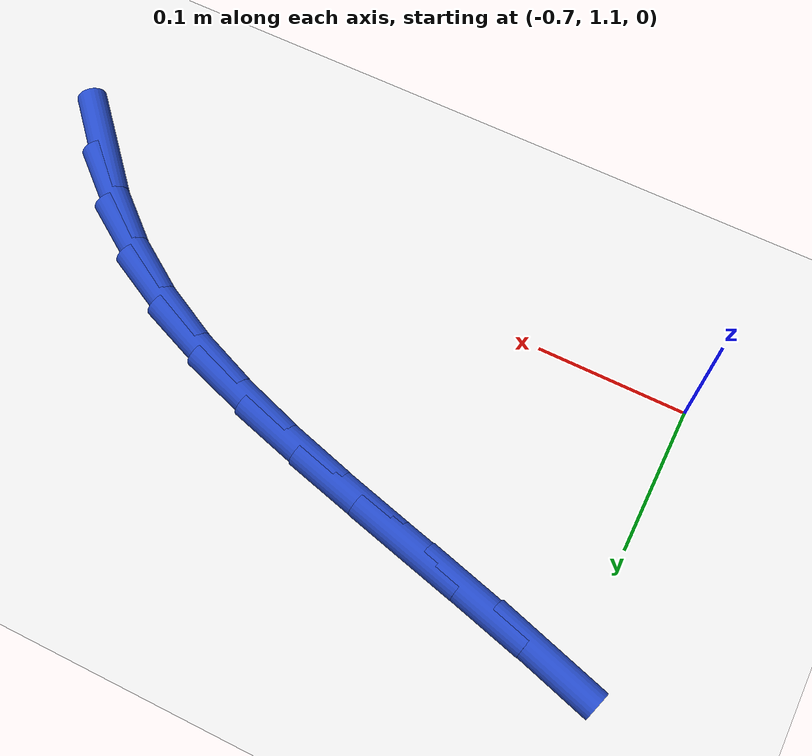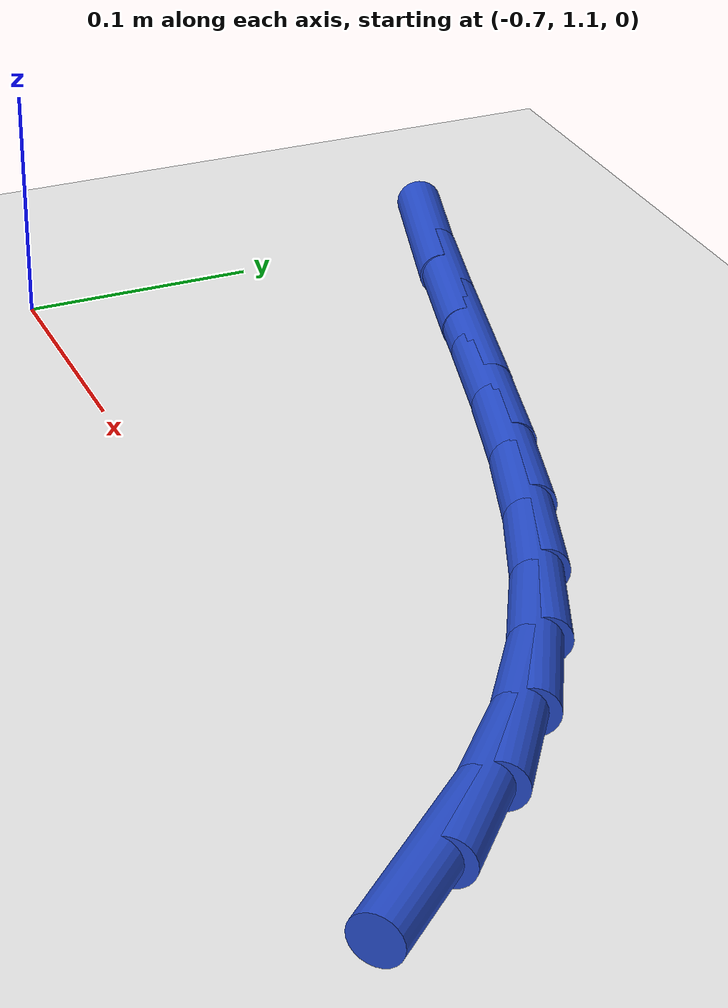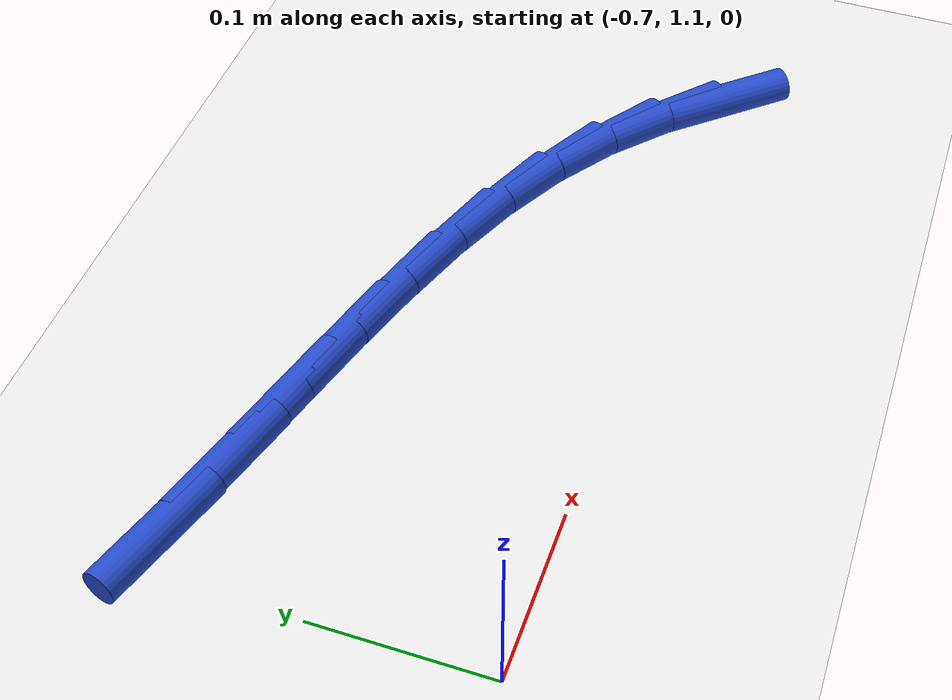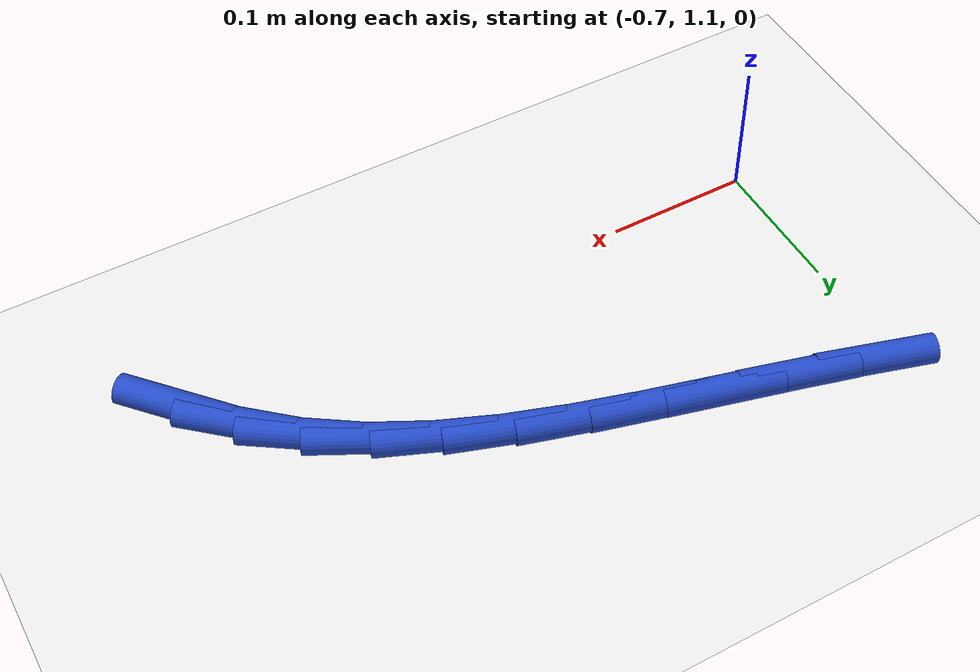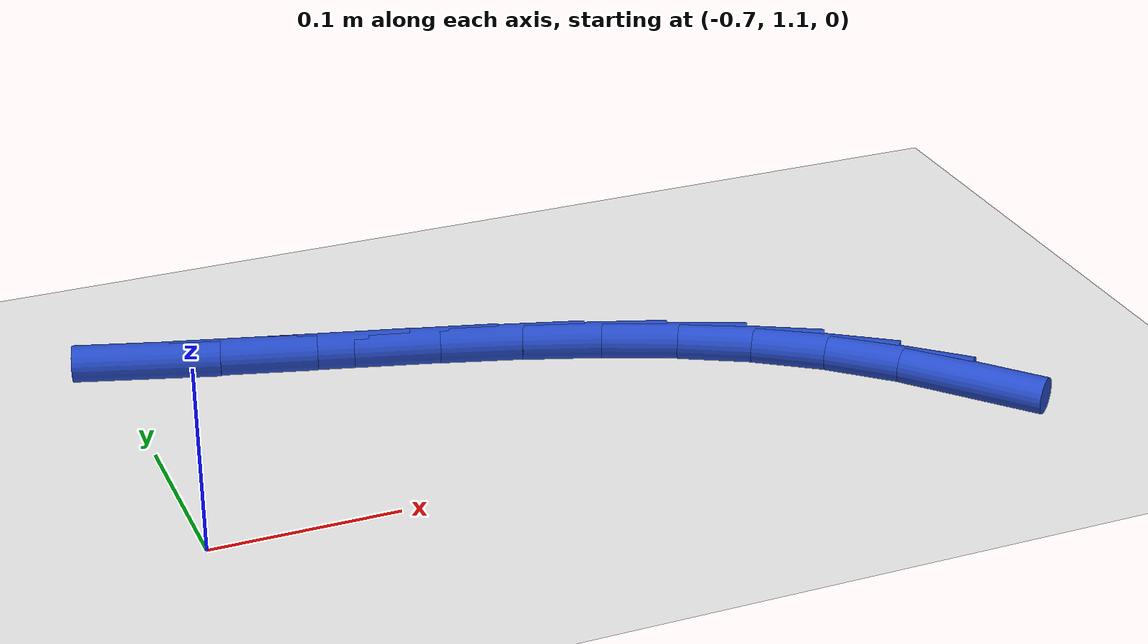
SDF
<sdf version="1.6">
 <world name="default">
  <model name="ground_plane">
   <static>1</static>
   <link name="link">
    <collision name="collision">
     <geometry><plane><normal>0 0 1</normal><size>100 100</size></plane></geometry>
     <surface><friction><ode><mu>100</mu><mu2>50</mu2></ode></friction></surface>
    </collision>
    <visual name="visual">
     <cast_shadows>0</cast_shadows>
     <geometry><plane><normal>0 0 1</normal><size>100 100</size></plane></geometry>
     <material>
      <script><uri>file://media/materials/scripts/gazebo.material</uri><name>Gazebo/WhiteGlow</name></script>
     </material>
    </visual>
   </link>
  </model>
  <model name="line">
   <link name="link_23">
    <pose>-0.27618328534567604 1.0976530350263796 0.01 0 1.57 -0.8472905187564059</pose>
    <collision name="collision">
     <geometry><cylinder><radius>0.01</radius><length>0.08</length></cylinder></geometry>
    </collision>
    <visual name="visual">
     <material>
      <script><name>Gazebo/Blue</name><uri>file://media/materials/scripts/gazebo.material</uri></script>
     </material>
     <geometry><cylinder><radius>0.01</radius><length>0.08</length></cylinder></geometry>
    </visual>
   </link>
   <link name="link_24">
    <pose>-0.30392204092842384 1.1290569510517394 0.01 0 1.57 -0.7278581985357417</pose>
    <collision name="collision">
     <geometry><cylinder><radius>0.01</radius><length>0.08</length></cylinder></geometry>
    </collision>
    <visual name="visual">
     <material>
      <script><name>Gazebo/Blue</name><uri>file://media/materials/scripts/gazebo.material</uri></script>
     </material>
     <geometry><cylinder><radius>0.01</radius><length>0.08</length></cylinder></geometry>
    </visual>
   </link>
   <link name="link_25">
    <pose>-0.3348213059493986 1.156590290552801 0.01 0 1.57 -0.599829708468835</pose>
    <collision name="collision">
     <geometry><cylinder><radius>0.01</radius><length>0.08</length></cylinder></geometry>
    </collision>
    <visual name="visual">
     <material>
      <script><name>Gazebo/Blue</name><uri>file://media/materials/scripts/gazebo.material</uri></script>
     </material>
     <geometry><cylinder><radius>0.01</radius><length>0.08</length></cylinder></geometry>
    </visual>
   </link>
   <link name="link_26">
    <pose>-0.3690835530213326 1.1800217905074926 0.01 0 1.57 -0.485533232569479</pose>
    <collision name="collision">
     <geometry><cylinder><radius>0.01</radius><length>0.08</length></cylinder></geometry>
    </collision>
    <visual name="visual">
     <material>
      <script><name>Gazebo/Blue</name><uri>file://media/materials/scripts/gazebo.material</uri></script>
     </material>
     <geometry><cylinder><radius>0.01</radius><length>0.08</length></cylinder></geometry>
    </visual>
   </link>
   <link name="link_27">
    <pose>-0.4065688197145622 1.1998014226547729 0.01 0 1.57 -0.39597505866669763</pose>
    <collision name="collision">
     <geometry><cylinder><radius>0.01</radius><length>0.08</length></cylinder></geometry>
    </collision>
    <visual name="visual">
     <material>
      <script><name>Gazebo/Blue</name><uri>file://media/materials/scripts/gazebo.material</uri></script>
     </material>
     <geometry><cylinder><radius>0.01</radius><length>0.08</length></cylinder></geometry>
    </visual>
   </link>
   <link name="link_28">
    <pose>-0.4469784152529325 1.2166949303509915 0.01 0 1.57 -0.33071761422270113</pose>
    <collision name="collision">
     <geometry><cylinder><radius>0.01</radius><length>0.08</length></cylinder></geometry>
    </collision>
    <visual name="visual">
     <material>
      <script><name>Gazebo/Blue</name><uri>file://media/materials/scripts/gazebo.material</uri></script>
     </material>
     <geometry><cylinder><radius>0.01</radius><length>0.08</length></cylinder></geometry>
    </visual>
   </link>
   <link name="link_29">
    <pose>-0.49001278054278613 1.2314697843693643 0.01 0 1.57 -0.2877270271286863</pose>
    <collision name="collision">
     <geometry><cylinder><radius>0.01</radius><length>0.08</length></cylinder></geometry>
    </collision>
    <visual name="visual">
     <material>
      <script><name>Gazebo/Blue</name><uri>file://media/materials/scripts/gazebo.material</uri></script>
     </material>
     <geometry><cylinder><radius>0.01</radius><length>0.08</length></cylinder></geometry>
    </visual>
   </link>
   <link name="link_30">
    <pose>-0.535372356490465 1.2448934554831037 0.01 0 1.57 -0.26461538843784094</pose>
    <collision name="collision">
     <geometry><cylinder><radius>0.01</radius><length>0.08</length></cylinder></geometry>
    </collision>
    <visual name="visual">
     <material>
      <script><name>Gazebo/Blue</name><uri>file://media/materials/scripts/gazebo.material</uri></script>
     </material>
     <geometry><cylinder><radius>0.01</radius><length>0.08</length></cylinder></geometry>
    </visual>
   </link>
   <link name="link_31">
    <pose>-0.5827575840023123 1.2577334144654242 0.01 0 1.57 -0.2592210990552404</pose>
    <collision name="collision">
     <geometry><cylinder><radius>0.01</radius><length>0.08</length></cylinder></geometry>
    </collision>
    <visual name="visual">
     <material>
      <script><name>Gazebo/Blue</name><uri>file://media/materials/scripts/gazebo.material</uri></script>
     </material>
     <geometry><cylinder><radius>0.01</radius><length>0.08</length></cylinder></geometry>
    </visual>
   </link>
   <link name="link_32">
    <pose>-0.6318689039846701 1.2707571320895397 0.01 0 1.57 -0.26978283371711775</pose>
    <collision name="collision">
     <geometry><cylinder><radius>0.01</radius><length>0.08</length></cylinder></geometry>
    </collision>
    <visual name="visual">
     <material>
      <script><name>Gazebo/Blue</name><uri>file://media/materials/scripts/gazebo.material</uri></script>
     </material>
     <geometry><cylinder><radius>0.01</radius><length>0.08</length></cylinder></geometry>
    </visual>
   </link>
   <link name="link_33">
    <pose>-0.6824067573438809 1.2847320791286636 0.01 0 1.57 -0.2949016783012847</pose>
    <collision name="collision">
     <geometry><cylinder><radius>0.01</radius><length>0.08</length></cylinder></geometry>
    </collision>
    <visual name="visual">
     <material>
      <script><name>Gazebo/Blue</name><uri>file://media/materials/scripts/gazebo.material</uri></script>
     </material>
     <geometry><cylinder><radius>0.01</radius><length>0.08</length></cylinder></geometry>
    </visual>
   </link>
  </model>
 </world>
</sdf>
